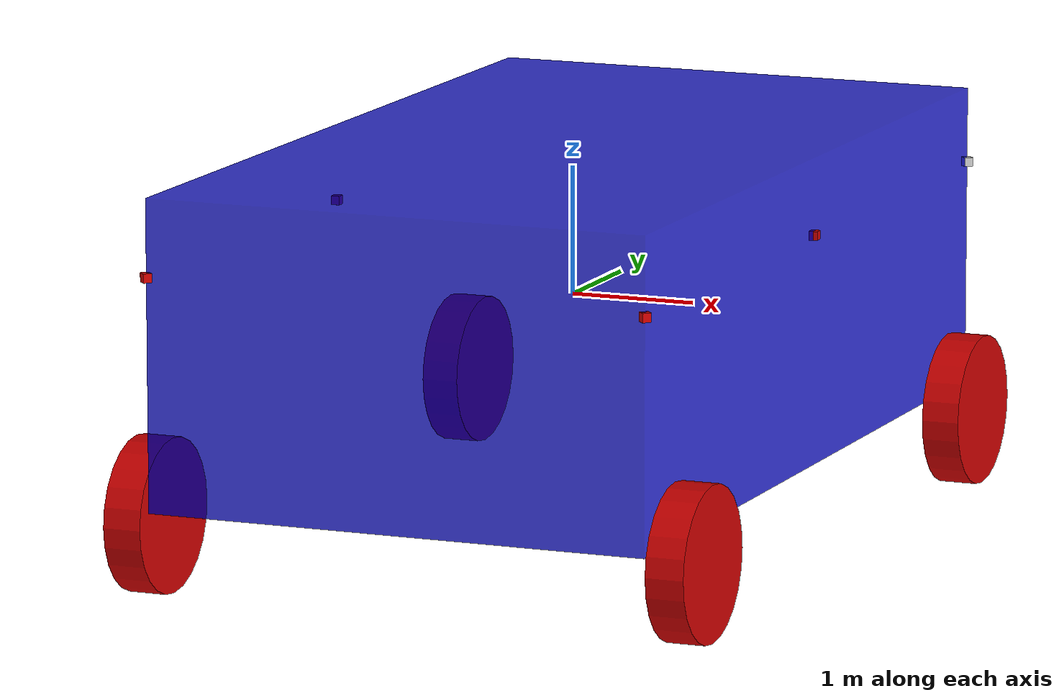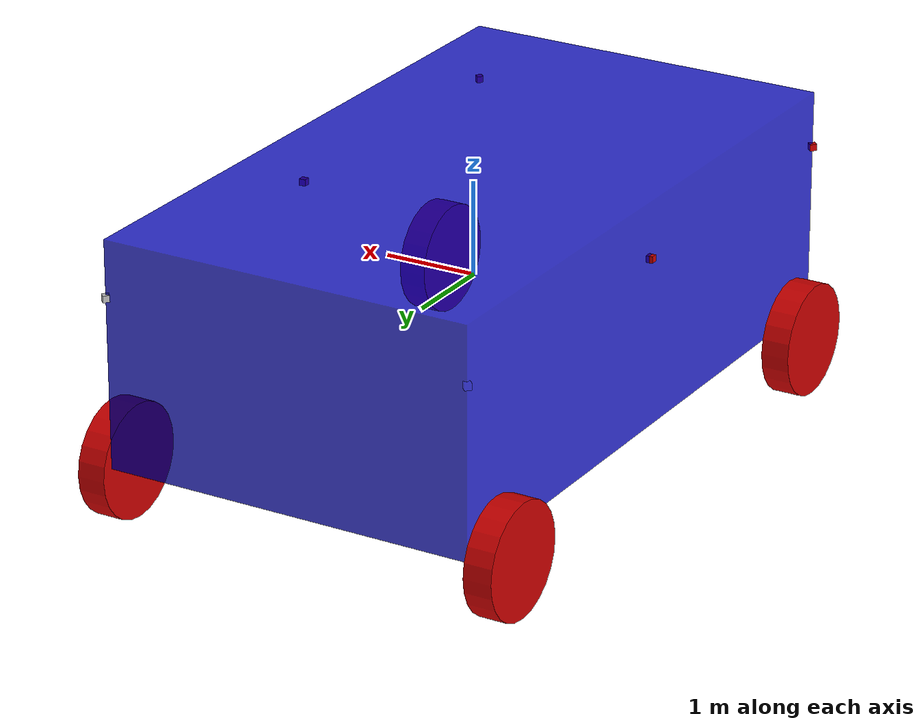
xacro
<?xml version="1.0" ?>
<robot name="work_env_cam" xmlns:xacro="http://www.ros.org/wiki/xacro" >
<xacro:include filename = "$(find camera_package)/urdf/big_work_env.plugins.xacro"/>

<xacro:property name="base_z" value="0" />
<xacro:property name="base_x" value="0" />
<xacro:property name="base_y" value="0" />
<xacro:property name="box_w" value="4" />
<xacro:property name="box_h" value="7" />
<xacro:property name="box_d" value="2.4" />

<xacro:property name="w_rad" value="0.6" />
<xacro:property name="w_len" value="0.3" />

<xacro:property name="cam_box" value="0.07" />
<xacro:property name="cam_rot" value="0.785398" /> 45 degrees
<xacro:property name="cam_height_pos" value="0.25" /> this is a percentage...0.25*box z_height

<xacro:property name="cam1_x" value="${base_x - box_w/2}" />
<xacro:property name="cam1_y" value="${base_y + box_h/2}" />
<xacro:property name="cam1_z" value="${box_d*cam_height_pos}" />

<xacro:property name="cam2_x" value="${base_x + box_w/2}" />
<xacro:property name="cam2_y" value="${base_y + box_h/2}" />
<xacro:property name="cam2_z" value="${box_d*cam_height_pos}" />

<xacro:property name="cam3_x" value="${base_x + box_w/2}" />
<xacro:property name="cam3_y" value="${base_y}" />
<xacro:property name="cam3_z" value="${box_d*cam_height_pos}" />

<xacro:property name="cam4_x" value="${base_x + box_w/2}" />
<xacro:property name="cam4_y" value="${base_y - box_h/2}" />
<xacro:property name="cam4_z" value="${box_d*cam_height_pos}" />

<xacro:property name="cam5_x" value="${base_x - box_w/2}" />
<xacro:property name="cam5_y" value="${base_y - box_h/2}" />
<xacro:property name="cam5_z" value="${box_d*cam_height_pos}" />

<xacro:property name="cam6_x" value="${base_x - box_w/2}" />
<xacro:property name="cam6_y" value="${base_y}" />
<xacro:property name="cam6_z" value="${box_d*cam_height_pos}" />

    <!-- Specify material colors here -->
    <material name="blue">
        <color rgba="0 0 0.8 0.8"/>
    </material>
    <material name="red">
        <color rgba="0.8 0 0 1"/>
    </material>
    <material name="grey">
        <color rgba="0.75 0.75 0.75 1"/>
    </material>

    <!-- Gazebo plugin initialization -->
    <gazebo>
        <plugin name="gazebo_ros_control" filename="libgazebo_ros_control.so">
            <robotNamespace>/work_env_cam</robotNamespace> This robot name is the same as robot name at the top
        </plugin>
    </gazebo>

<!-- ////////////////////////// === WORLD LINK ==== //////////////////////////////////// -->

     <!-- ////////////////////////// === BASE LINK ==== //////////////////////////////////// -->
   <!-- Main base link -->
    <link name="base_link">
        <visual>
            <origin xyz="${base_x} ${base_y} ${base_z}" rpy="0 0 0"/>  created at 31 meters above just to have space to work with
                <geometry>
                    <box size="${box_w} ${box_h} ${box_d}"/>
                </geometry>
            <material name = "blue"/>
        </visual>

        <collision>
            <origin xyz="${base_x} ${base_y} ${base_z}" rpy="0 0 0"/>
            <geometry>
                <box size="${box_w} ${box_h} ${box_d}"/>
            </geometry>
        </collision>
        <inertial>
            <mass value="2.0" />
            DONT FORGET THE ORIGIN VALUES
            <origin xyz="${base_x} ${base_y} ${base_z}" rpy="0 0 0"/> Inertia was calculated from the inertial calculator program
            <inertia ixx="0.05000000000000001" ixy="0" ixz="0" iyy="0.08000000000000002" iyz="0" izz="0.05000000000000001" />
        </inertial>
    </link>

    This is for color and physical properties in Gazebo, color won't work with the material tag in gazebo
    only for URDF coloring
    <gazebo reference="base_link">
        <mu1>10.0</mu1>
        <mu2>10.0</mu2>
        <material>Gazebo/DarkGrey</material>
    </gazebo>

    <!-- ////////////////////////// === WHEEL LINKS ==== //////////////////////////////////// -->
<!--wheel 1--> top left            wheel 1
    <link name="wheel_link_1">
        <collision>
        <origin xyz="0 0 0" rpy="0 0 0"/>
        <geometry>
            <cylinder length="${w_len}" radius="${w_rad}" />
        </geometry>
        </collision>

        <visual>
        <origin xyz="0 0 0" rpy="0 0 0"/>
        <geometry>
            <cylinder length="${w_len}" radius="${w_rad}" />
        </geometry>
        <material name="red"/>
        </visual>

        <inertial>
            <mass value="1"/> This camera was estimated from the mass(weight) of a logitech camera = 0.25kg
            <origin xyz="0 0 0" rpy="0 0 0"/> Inertia was calculated from the inertial calculator program
            <inertia ixx="0.010208333333333335" ixy="0" ixz="0" iyy="0.010208333333333335" iyz="0" izz="0.020000000000000004" />
        </inertial>
    </link>

    <gazebo reference="wheel_link_1">
        <mu1>1.0</mu1>
        <mu2>1.0</mu2>
        <kp>1000000.0</kp>
        <kd>100.0</kd>
        <minDepth>0.001</minDepth>
        <maxVel>1.0</maxVel>
        <material>Gazebo/Red</material>
    </gazebo>

<!--wheel 2--> top right            wheel 2
    <link name="wheel_link_2">
        <collision>
        <origin xyz="0 0 0" rpy="0 0 0"/>
        <geometry>
            <cylinder length="${w_len}" radius="${w_rad}" />
        </geometry>
        </collision>

        <visual>
        <origin xyz="0 0 0" rpy="0 0 0"/>
        <geometry>
            <cylinder length="${w_len}" radius="${w_rad}" />
        </geometry>
        <material name="red"/>
        </visual>
        <inertial>
            <mass value="1"/> This camera was estimated from the mass(weight) of a logitech camera = 0.25kg
            <origin xyz="0 0 0" rpy="0 0 0"/> Inertia was calculated from the inertial calculator program
            <inertia ixx="0.010208333333333335" ixy="0" ixz="0" iyy="0.010208333333333335" iyz="0" izz="0.020000000000000004" />
        </inertial>
    </link>

    <gazebo reference="wheel_link_2">
        <mu1>1.0</mu1>
        <mu2>1.0</mu2>
        <kp>1000000.0</kp>
        <kd>100.0</kd>
        <minDepth>0.001</minDepth>
        <maxVel>1.0</maxVel> <mu1>10.0</mu1>
        <mu2>10.0</mu2>
        <material>Gazebo/Red</material>
    </gazebo>

<!--wheel 3--> back right            wheel 3
 <link name="wheel_link_3">
        <collision>
        <origin xyz="0 0 0" rpy="0 0 0"/>
        <geometry>
            <cylinder length="${w_len}" radius="${w_rad}" />
        </geometry>
        </collision>

        <visual>
        <origin xyz="0 0 0" rpy="0 0 0"/>
        <geometry>
            <cylinder length="${w_len}" radius="${w_rad}" />
        </geometry>
        <material name="red"/>
        </visual>
        <inertial>
            <mass value="1"/> This camera was estimated from the mass(weight) of a logitech camera = 0.25kg
            <origin xyz="0 0 0" rpy="0 0 0"/> Inertia was calculated from the inertial calculator program
            <inertia ixx="0.010208333333333335" ixy="0" ixz="0" iyy="0.010208333333333335" iyz="0" izz="0.020000000000000004" />
        </inertial>
    </link>

    <gazebo reference="wheel_link_3">
        <mu1>1.0</mu1>
        <mu2>1.0</mu2>
        <kp>1000000.0</kp>
        <kd>100.0</kd>
        <minDepth>0.001</minDepth>
        <maxVel>1.0</maxVel>
        <material>Gazebo/Red</material>
    </gazebo>

    <!--wheel 4--> back left            wheel 4
 <link name="wheel_link_4">
        <collision>
        <origin xyz="0 0 0" rpy="0 0 0"/>
        <geometry>
            <cylinder length="${w_len}" radius="${w_rad}" />
        </geometry>
        </collision>

        <visual>
        <origin xyz="0 0 0" rpy="0 0 0"/>
        <geometry>
            <cylinder length="${w_len}" radius="${w_rad}" />
        </geometry>
        <material name="red"/>
        </visual>
        <inertial>
            <mass value="1"/> This camera was estimated from the mass(weight) of a logitech camera = 0.25kg
            <origin xyz="0 0 0" rpy="0 0 0"/> Inertia was calculated from the inertial calculator program
            <inertia ixx="0.010208333333333335" ixy="0" ixz="0" iyy="0.010208333333333335" iyz="0" izz="0.020000000000000004" />
        </inertial>
    </link>

    <gazebo reference="wheel_link_4">

        <mu1>1.0</mu1>
        <mu2>1.0</mu2>
        <kp>1000000.0</kp>
        <kd>100.0</kd>
        <minDepth>0.001</minDepth>
        <maxVel>1.0</maxVel>
        <material>Gazebo/Red</material>
    </gazebo>

    <!-- ////////////////////////// === CAMERA LINKS ==== //////////////////////////////////// -->
 Change camera size to make more visible 0.5 0.5 0.5...original = 0.07 0.07 0.07
    <!-- Camera top left-->
    <link name="cam_top_left">
        <collision>
        <origin xyz="0 0 0" rpy="0 0 0"/>
        <geometry>
            <box size="${cam_box} ${cam_box} ${cam_box}"/>
        </geometry>
        </collision>

        <visual>
        <origin xyz="0 0 0" rpy="0 0 0"/>
        <geometry>
            <box size="${cam_box} ${cam_box} ${cam_box}"/>
        </geometry>
        <material name="blue"/>
        </visual>

        <inertial>
            <mass value="0.25"/> This camera was estimated from the mass(weight) of a logitech camera = 0.25kg
            <origin xyz="0 0 0" rpy="0 0 0"/> Inertia was calculated from the inertial calculator program
            <inertia ixx="0.00020416666666666668" ixy="0" ixz="0" iyy="0.00020416666666666668" iyz="0" izz="0.00020416666666666668" />
        </inertial>
    </link>

    <gazebo reference="cam_top_left">
        <mu1>10.0</mu1>
        <mu2>10.0</mu2>
        <material>Gazebo/Blue</material>
    </gazebo>

    <!-- Camera top right-->
    <link name="cam_top_right">
        <collision>
        <origin xyz="0 0 0" rpy="0 0 0"/>
        <geometry>
            <box size="${cam_box} ${cam_box} ${cam_box}"/>
        </geometry>
        </collision>

        <visual>
        <origin xyz="0 0 0" rpy="0 0 0"/>
        <geometry>
            <box size="${cam_box} ${cam_box} ${cam_box}"/>
        </geometry>
        <material name="grey"/>
        </visual>

        <inertial>
            <mass value="0.25"/> This camera was estimated from the mass(weight) of a logitech camera = 0.25kg
            <origin xyz="0 0 0" rpy="0 0 0"/> Inertia was calculated from the inertial calculator program
            <inertia ixx="0.00020416666666666668" ixy="0" ixz="0" iyy="0.00020416666666666668" iyz="0" izz="0.00020416666666666668" />
        </inertial>
    </link>

    <gazebo reference="cam_top_right">
        <mu1>10.0</mu1>
        <mu2>10.0</mu2>
        <material>Gazebo/Red</material>
    </gazebo>

    <!-- Camera right-->
    <link name="cam_right">
        <collision>
        <origin xyz="0 0 0" rpy="0 0 0"/>
        <geometry>
            <box size="${cam_box} ${cam_box} ${cam_box}"/>
        </geometry>
        </collision>

        <visual>
        <origin xyz="0 0 0" rpy="0 0 0"/>
        <geometry>
            <box size="${cam_box} ${cam_box} ${cam_box}"/>
        </geometry>
        <material name="red"/>
        </visual>

        <inertial>
            <mass value="0.25"/> This camera was estimated from the mass(weight) of a logitech camera = 0.25kg
            <origin xyz="0 0 0" rpy="0 0 0"/> Inertia was calculated from the inertial calculator program
            <inertia ixx="0.00020416666666666668" ixy="0" ixz="0" iyy="0.00020416666666666668" iyz="0" izz="0.00020416666666666668" />
        </inertial>
    </link>

    <gazebo reference="cam_right">
        <mu1>10.0</mu1>
        <mu2>10.0</mu2>
        <material>Gazebo/Yellow</material>
    </gazebo>

    <!-- Camera back right-->
    <link name="cam_back_right">
        <collision>
        <origin xyz="0 0 0" rpy="0 0 0"/>
        <geometry>
            <box size="${cam_box} ${cam_box} ${cam_box}"/>
        </geometry>
        </collision>

        <visual>
        <origin xyz="0 0 0" rpy="0 0 0"/>
        <geometry>
            <box size="${cam_box} ${cam_box} ${cam_box}"/>
        </geometry>
        <material name="red"/>
        </visual>

        <inertial>
            <mass value="0.25"/> This camera was estimated from the mass(weight) of a logitech camera = 0.25kg
            <origin xyz="0 0 0" rpy="0 0 0"/> Inertia was calculated from the inertial calculator program
            <inertia ixx="0.00020416666666666668" ixy="0" ixz="0" iyy="0.00020416666666666668" iyz="0" izz="0.00020416666666666668" />
        </inertial>
    </link>

    <gazebo reference="cam_back_right">
        <mu1>10.0</mu1>
        <mu2>10.0</mu2>
        <material>Gazebo/Green</material>
    </gazebo>

    <!-- Camera back left-->
    <link name="cam_back_left">
        <collision>
        <origin xyz="0 0 0" rpy="0 0 0"/>
        <geometry>
            <box size="${cam_box} ${cam_box} ${cam_box}"/>
        </geometry>
        </collision>

        <visual>
        <origin xyz="0 0 0" rpy="0 0 0"/>
        <geometry>
            <box size="${cam_box} ${cam_box} ${cam_box}"/>
        </geometry>
        <material name="red"/>
        </visual>

        <inertial>
            <mass value="0.25"/> This camera was estimated from the mass(weight) of a logitech camera = 0.25kg
            <origin xyz="0 0 0" rpy="0 0 0"/> Inertia was calculated from the inertial calculator program
            <inertia ixx="0.00020416666666666668" ixy="0" ixz="0" iyy="0.00020416666666666668" iyz="0" izz="0.00020416666666666668" />
        </inertial>
    </link>

    <gazebo reference="cam_back_left">
        <mu1>10.0</mu1>
        <mu2>10.0</mu2>
        <material>Gazebo/White</material>
    </gazebo>

    <!-- Camera left-->
    <link name="cam_left">
        <collision>
        <origin xyz="0 0 0" rpy="0 0 0"/>
        <geometry>
            <box size="${cam_box} ${cam_box} ${cam_box}"/>
        </geometry>
        </collision>

        <visual>
        <origin xyz="0 0 0" rpy="0 0 0"/>
        <geometry>
            <box size="${cam_box} ${cam_box} ${cam_box}"/>
        </geometry>
        <material name="red"/>
        </visual>

        <inertial>
            <mass value="0.25"/> This camera was estimated from the mass(weight) of a logitech camera = 0.25kg
            <origin xyz="0 0 0" rpy="0 0 0"/> Inertia was calculated from the inertial calculator program
            <inertia ixx="0.00020416666666666668" ixy="0" ixz="0" iyy="0.00020416666666666668" iyz="0" izz="0.00020416666666666668" />
        </inertial>
    </link>

    <gazebo reference="cam_left">
        <mu1>10.0</mu1>
        <mu2>10.0</mu2>
        <material>Gazebo/Orange</material>
    </gazebo>

        <!-- ////////////////////////// === Joints ==== //////////////////////////////////// -->
  I can spawn all the camera links at origin 0 0 0  but I use the joints to move them to the positions I want them in.

    <!-- joint = base_link to camera_link -->      camera 1
    <joint name="camera_joint_top_left" type="fixed">
        <origin xyz="${cam1_x} ${cam1_y} ${cam1_z}" rpy="-1.57 0 ${1*cam_rot}"/>
        <parent link="base_link"/>
        <child link="cam_top_left"/>
    </joint>

    <!-- joint = base_link to camera_link -->       camera 2
    <joint name="camera_joint_top_right" type="fixed">
        <origin xyz="${cam2_x} ${cam2_y} ${cam2_z}" rpy="-1.57 0 ${-1*cam_rot}"/>
        <parent link="base_link"/>
        <child link="cam_top_right"/>
    </joint>

     <!-- joint = base_link to camera_link -->       camera 3
    <joint name="camera_joint_right" type="fixed">
        <origin xyz="${cam3_x} ${cam3_y} ${cam3_z}" rpy="-1.57 0 -1.57"/>
        <parent link="base_link"/>
        <child link="cam_right"/>
    </joint>

    <!-- joint = base_link to camera_link -->       camera 4
    <joint name="camera_joint_back_right" type="fixed">
        <origin xyz="${cam4_x} ${cam4_y} ${cam4_z}" rpy="-1.57 0 ${-1*cam_rot -1.57}"/>
        <parent link="base_link"/>
        <child link="cam_back_right"/>
    </joint>

     <!-- joint = base_link to camera_link -->       camera 5
    <joint name="camera_joint_back_left" type="fixed">
        <origin xyz="${cam5_x} ${cam5_y} ${cam5_z}" rpy="-1.57 0 ${1*cam_rot+1.57}"/>
        <parent link="base_link"/>
        <child link="cam_back_left"/>
    </joint>

    <!-- joint = base_link to camera_link -->       camera 6
    <joint name="camera_joint_left" type="fixed">
        <origin xyz="${cam6_x} ${cam6_y} ${cam6_z}" rpy="-1.57 0 1.57"/>
        <parent link="base_link"/>
        <child link="cam_left"/>
    </joint>

    <!-- joint = base_link to wheel_1_link -->       wheel joint 1--top left
    <joint name="wheel_1_joint" type="continuous">
        <origin xyz="${cam1_x -0.16} ${cam1_y-0.5} ${-box_d*0.55}" rpy="0 -1.57  0"/>
        <parent link="base_link"/>
        <child link="wheel_link_1"/>
        <axis xyz="0 0 1"/>
    </joint>

    <!-- joint = base_link to wheel_2_link -->       wheel joint 2  --top right
    <joint name="wheel_2_joint" type="continuous">
        <origin xyz="${cam2_y-1.32} ${cam2_y-0.5} ${-box_d*0.55}" rpy="0 -1.57  0"/>
        <parent link="base_link"/>
        <child link="wheel_link_2"/>
        <axis xyz="0 0 1"/>
    </joint>

    <!-- joint = base_link to wheel_3_link -->       wheel joint 3  back right
    <joint name="wheel_3_joint" type="continuous">
        <origin xyz="${cam4_x+0.19} ${cam4_y+0.5} ${-box_d*0.55}" rpy="0 -1.57 0 "/>
        <parent link="base_link"/>
        <child link="wheel_link_3"/>
        <axis xyz="0 0 1"/>
    </joint>

    <!-- joint = base_link to wheel_4_link -->       wheel joint 4   back left
    <joint name="wheel_4_joint" type="continuous">
        <origin xyz="${cam5_y+1.32} ${cam5_y+0.5} ${-box_d*0.55}" rpy="0 -1.57  0"/>
        <parent link="base_link"/>
        <child link="wheel_link_4"/>
        <axis xyz="0 0 1"/>
    </joint>

    <transmission name="tran1">
        <type>transmission_interface/SimpleTransmission</type>
        <joint name="wheel_1_joint">
            <hardwareInterface>EffortJointInterface</hardwareInterface>
        </joint>
        <actuator name="motor1">
            <hardwareInterface>EffortJointInterface</hardwareInterface>
            <mechanicalReduction>1</mechanicalReduction>
        </actuator>
    </transmission>

    <transmission name="tran2">
        <type>transmission_interface/SimpleTransmission</type>
        <joint name="wheel_2_joint">
            <hardwareInterface>EffortJointInterface</hardwareInterface>
        </joint>
        <actuator name="motor2">
            <hardwareInterface>EffortJointInterface</hardwareInterface>
            <mechanicalReduction>1</mechanicalReduction>
        </actuator>
    </transmission>

    <transmission name="tran3">
        <type>transmission_interface/SimpleTransmission</type>
        <joint name="wheel_3_joint">
            <hardwareInterface>EffortJointInterface</hardwareInterface>
        </joint>
        <actuator name="motor3">
            <hardwareInterface>EffortJointInterface</hardwareInterface>
            <mechanicalReduction>1</mechanicalReduction>
        </actuator>
    </transmission>

    <transmission name="tran4">
        <type>transmission_interface/SimpleTransmission</type>
        <joint name="wheel_4_joint">
            <hardwareInterface>EffortJointInterface</hardwareInterface>
        </joint>
        <actuator name="motor4">
            <hardwareInterface>EffortJointInterface</hardwareInterface>
            <mechanicalReduction>1</mechanicalReduction>
        </actuator>
    </transmission>

</robot>
